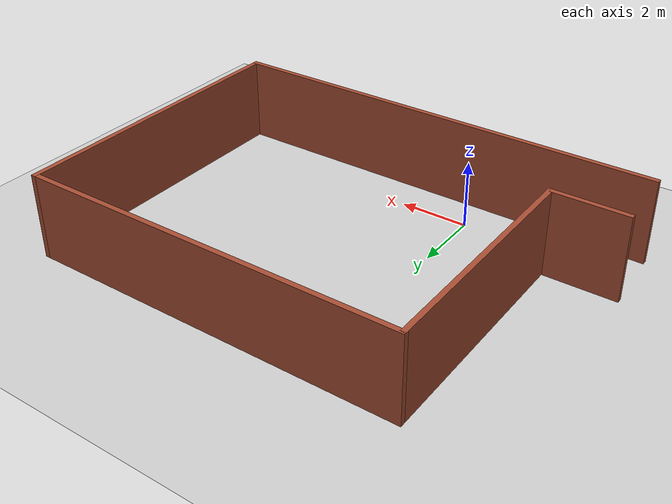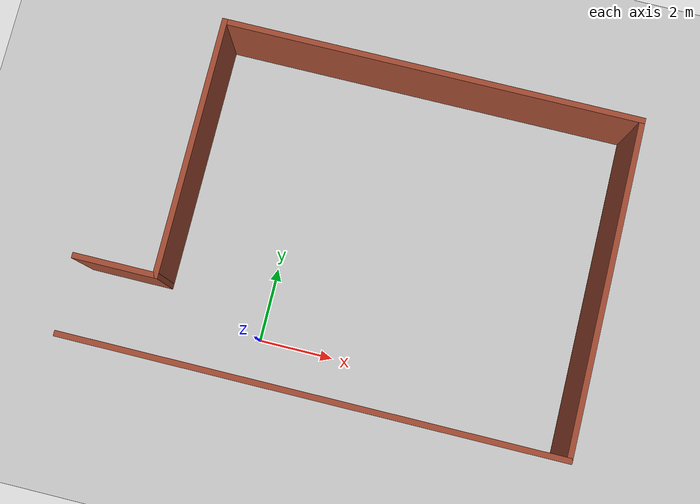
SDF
<sdf version="1.7">
 <world name="default">
  <model name="ground_plane">
   <static>1</static>
   <link name="link">
    <collision name="collision">
     <geometry><plane><normal>0 0 1</normal><size>100 100</size></plane></geometry>
     <surface><friction><ode><mu>100</mu><mu2>50</mu2></ode></friction></surface>
    </collision>
    <visual name="visual">
     <cast_shadows>0</cast_shadows>
     <geometry><plane><normal>0 0 1</normal><size>100 100</size></plane></geometry>
     <material>
      <script><uri>file://media/materials/scripts/gazebo.material</uri><name>Gazebo/Grey</name></script>
     </material>
    </visual>
   </link>
  </model>
  <light name="sun" type="directional">
   <pose>0 0 10 0 -0 0</pose>
   <diffuse>0.8 0.8 0.8 1</diffuse>
   <specular>0.2 0.2 0.2 1</specular>
   <attenuation>
    <range>1000</range>
    <constant>0.9</constant>
    <linear>0.01</linear>
    <quadratic>0.001</quadratic>
   </attenuation>
   <direction>-0.5 0.1 -0.9</direction>
   <spot><inner_angle>0</inner_angle><outer_angle>0</outer_angle><falloff>0</falloff></spot>
  </light>
  <scene><shadows>0</shadows><ambient>0.4 0.4 0.4 1</ambient><background>0.7 0.7 0.7 1</background></scene>
  <physics type="ode">
   <real_time_update_rate>1000</real_time_update_rate>
   <max_step_size>0.001</max_step_size>
   <real_time_factor>1</real_time_factor>
   <ode>
    <solver>
     <type>quick</type>
     <iters>150</iters>
     <precon_iters>0</precon_iters>
     <sor>1.4</sor>
     <use_dynamic_moi_rescaling>1</use_dynamic_moi_rescaling>
    </solver>
    <constraints>
     <cfm>1e-05</cfm>
     <erp>0.2</erp>
     <contact_max_correcting_vel>2000</contact_max_correcting_vel>
     <contact_surface_layer>0.01</contact_surface_layer>
    </constraints>
   </ode>
  </physics>
  <gravity>0 0 -9.8</gravity>
  <magnetic_field>6e-06 2.3e-05 -4.2e-05</magnetic_field>
  <atmosphere type="adiabatic"/>
  <audio><device>default</device></audio>
  <spherical_coordinates>
   <surface_model>EARTH_WGS84</surface_model>
   <latitude_deg>0</latitude_deg>
   <longitude_deg>0</longitude_deg>
   <elevation>0</elevation>
   <heading_deg>0</heading_deg>
  </spherical_coordinates>
  <model name="squre_room">
   <pose>1.75249 3.29479 0 0 -0 0</pose>
   <link name="Wall_28">
    <collision name="Wall_28_Collision">
     <geometry><box><size>13.25 0.15 2.5</size></box></geometry>
     <pose>0 0 1.25 0 -0 0</pose>
    </collision>
    <visual name="Wall_28_Visual">
     <pose>0 0 1.25 0 -0 0</pose>
     <geometry><box><size>13.25 0.15 2.5</size></box></geometry>
     <material>
      <script><uri>file://media/materials/scripts/gazebo.material</uri><name>Gazebo/Bricks</name></script>
      <ambient>1 1 1 1</ambient>
     </material>
     <meta><layer>0</layer></meta>
    </visual>
    <pose>0.05 -4.425 0 0 -0 0</pose>
   </link>
   <link name="Wall_29">
    <collision name="Wall_29_Collision">
     <geometry><box><size>9 0.15 2.5</size></box></geometry>
     <pose>0 0 1.25 0 -0 0</pose>
    </collision>
    <visual name="Wall_29_Visual">
     <pose>0 0 1.25 0 -0 0</pose>
     <geometry><box><size>9 0.15 2.5</size></box></geometry>
     <material>
      <script><uri>file://media/materials/scripts/gazebo.material</uri><name>Gazebo/Bricks</name></script>
      <ambient>1 1 1 1</ambient>
     </material>
     <meta><layer>0</layer></meta>
    </visual>
    <pose>6.6 -0 0 0 -0 1.5708</pose>
   </link>
   <link name="Wall_30">
    <collision name="Wall_30_Collision">
     <geometry><box><size>11.25 0.15 2.5</size></box></geometry>
     <pose>0 0 1.25 0 -0 0</pose>
    </collision>
    <visual name="Wall_30_Visual">
     <pose>0 0 1.25 0 -0 0</pose>
     <geometry><box><size>11.25 0.15 2.5</size></box></geometry>
     <material>
      <script><uri>file://media/materials/scripts/gazebo.material</uri><name>Gazebo/Bricks</name></script>
      <ambient>1 1 1 1</ambient>
     </material>
     <meta><layer>0</layer></meta>
    </visual>
    <pose>1.05 4.425 0 0 -0 3.14159</pose>
   </link>
   <link name="Wall_31">
    <collision name="Wall_31_Collision">
     <geometry><box><size>7 0.15 2.5</size></box></geometry>
     <pose>0 0 1.25 0 -0 0</pose>
    </collision>
    <visual name="Wall_31_Visual">
     <pose>0 0 1.25 0 -0 0</pose>
     <geometry><box><size>7 0.15 2.5</size></box></geometry>
     <material>
      <script><uri>file://media/materials/scripts/gazebo.material</uri><name>Gazebo/Bricks</name></script>
      <ambient>1 1 1 1</ambient>
     </material>
     <meta><layer>0</layer></meta>
    </visual>
    <pose>-4.5 1 0 0 -0 -1.5708</pose>
   </link>
   <link name="Wall_32">
    <collision name="Wall_32_Collision">
     <geometry><box><size>2.25 0.15 2.5</size></box></geometry>
     <pose>0 0 1.25 0 -0 0</pose>
    </collision>
    <visual name="Wall_32_Visual">
     <pose>0 0 1.25 0 -0 0</pose>
     <geometry><box><size>2.25 0.15 2.5</size></box></geometry>
     <material>
      <script><uri>file://media/materials/scripts/gazebo.material</uri><name>Gazebo/Bricks</name></script>
      <ambient>1 1 1 1</ambient>
     </material>
     <meta><layer>0</layer></meta>
    </visual>
    <pose>-5.55 -2.425 0 0 -0 3.14159</pose>
   </link>
   <static>1</static>
  </model>
 </world>
</sdf>
